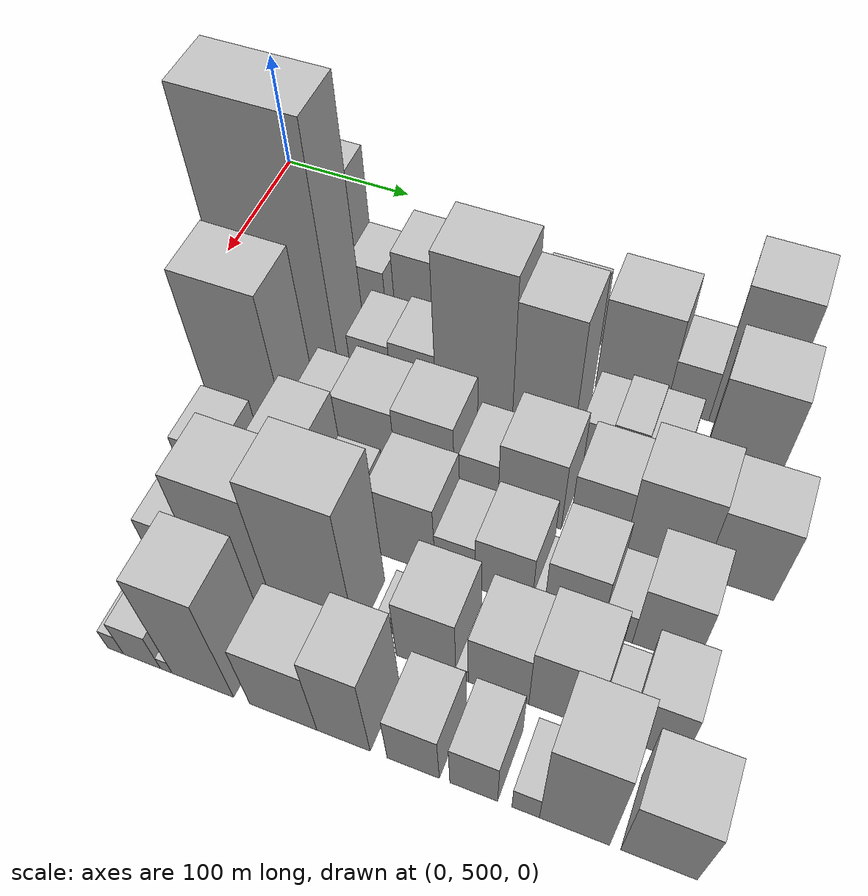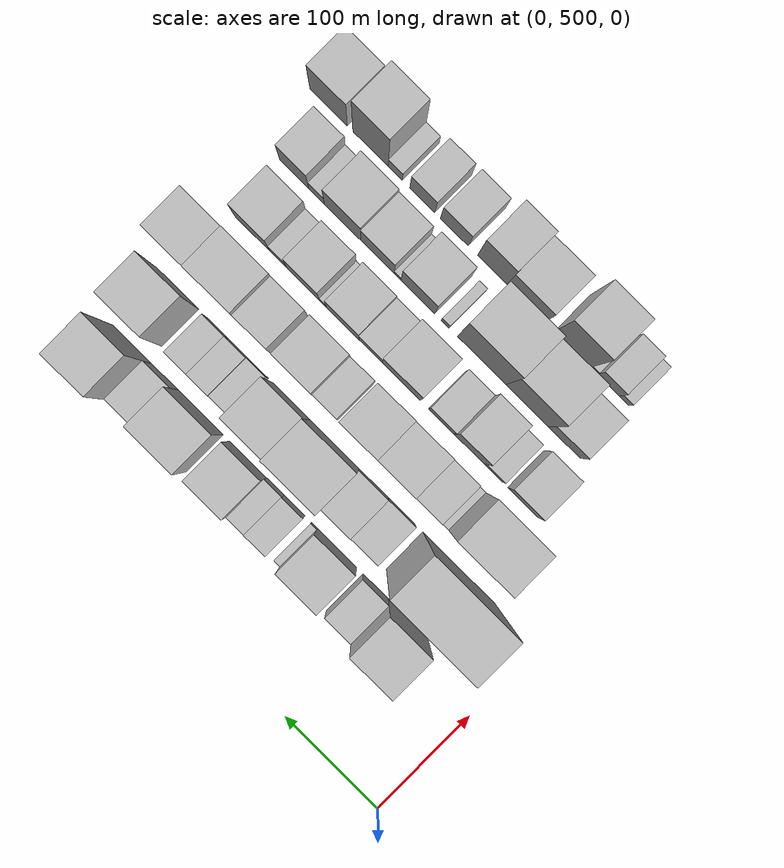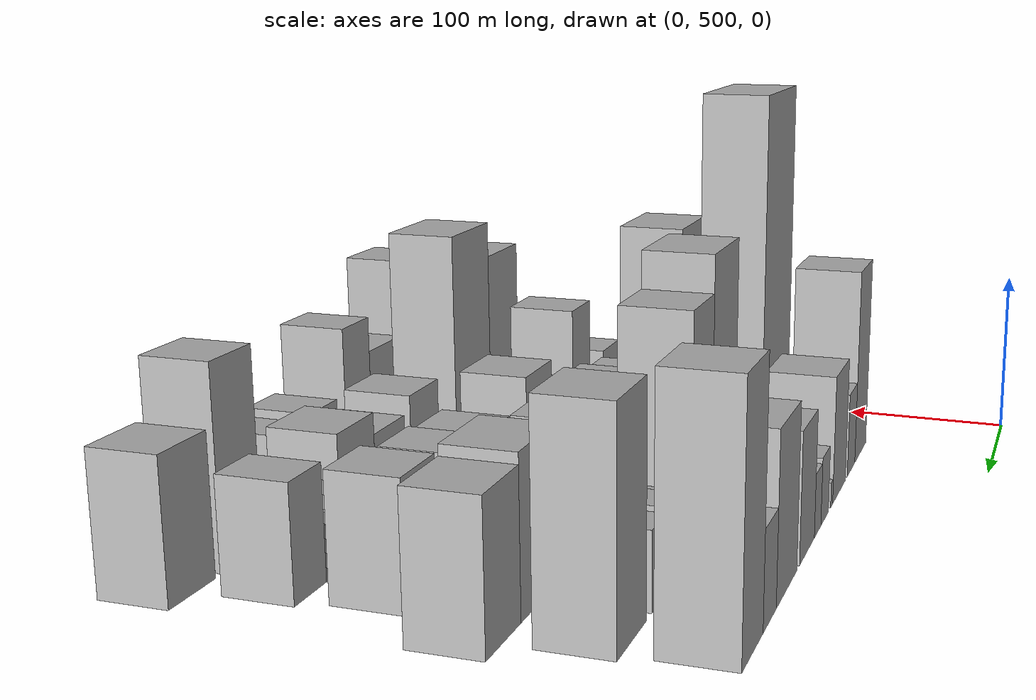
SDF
<sdf version="1.6">
 <world name="default">
  <model name="building_42">
   <static>1</static>
   <pose>100.0000 586.4591 0 0.000000 0.000000 0.000000</pose>
   <link name="link">
    <pose>0 0 60.00 0 0 0</pose>
    <collision name="collision"><geometry><box><size>40.0000 42.4041 120.0000</size></box></geometry></collision>
    <visual name="visual">
     <cast_shadows>0</cast_shadows>
     <geometry><box><size>40.0000 42.4041 120.0000</size></box></geometry>
     <material>
      <script>
       <uri>model://HANNAS_wall/materials/scripts</uri>
       <uri>model://HANNAS_wall/materials/textures</uri>
       <name>vrc/HANNAS_wall</name>
      </script>
     </material>
    </visual>
   </link>
  </model>
  <model name="building_43">
   <static>1</static>
   <pose>100.0000 621.3131 0 0.000000 0.000000 0.000000</pose>
   <link name="link">
    <pose>0 0 25.50 0 0 0</pose>
    <collision name="collision"><geometry><box><size>40.0000 27.3041 51.0000</size></box></geometry></collision>
    <visual name="visual">
     <cast_shadows>0</cast_shadows>
     <geometry><box><size>40.0000 27.3041 51.0000</size></box></geometry>
     <material>
      <script>
       <uri>model://HANNAS_wall/materials/scripts</uri>
       <uri>model://HANNAS_wall/materials/textures</uri>
       <name>vrc/HANNAS_wall</name>
      </script>
     </material>
    </visual>
   </link>
  </model>
  <model name="building_44">
   <static>1</static>
   <pose>100.0000 663.0718 0 0.000000 0.000000 0.000000</pose>
   <link name="link">
    <pose>0 0 37.50 0 0 0</pose>
    <collision name="collision"><geometry><box><size>40.0000 42.2133 75.0000</size></box></geometry></collision>
    <visual name="visual">
     <cast_shadows>0</cast_shadows>
     <geometry><box><size>40.0000 42.2133 75.0000</size></box></geometry>
     <material>
      <script>
       <uri>model://HANNAS_wall/materials/scripts</uri>
       <uri>model://HANNAS_wall/materials/textures</uri>
       <name>vrc/HANNAS_wall</name>
      </script>
     </material>
    </visual>
   </link>
  </model>
  <model name="building_45">
   <static>1</static>
   <pose>100.0000 687.4106 0 0.000000 0.000000 0.000000</pose>
   <link name="link">
    <pose>0 0 7.50 0 0 0</pose>
    <collision name="collision"><geometry><box><size>40.0000 6.4641 15.0000</size></box></geometry></collision>
    <visual name="visual">
     <cast_shadows>0</cast_shadows>
     <geometry><box><size>40.0000 6.4641 15.0000</size></box></geometry>
     <material>
      <script>
       <uri>model://HANNAS_wall/materials/scripts</uri>
       <uri>model://HANNAS_wall/materials/textures</uri>
       <name>vrc/HANNAS_wall</name>
      </script>
     </material>
    </visual>
   </link>
  </model>
  <model name="building_46">
   <static>1</static>
   <pose>100.0000 708.9300 0 0.000000 0.000000 0.000000</pose>
   <link name="link">
    <pose>0 0 19.50 0 0 0</pose>
    <collision name="collision"><geometry><box><size>40.0000 22.5746 39.0000</size></box></geometry></collision>
    <visual name="visual">
     <cast_shadows>0</cast_shadows>
     <geometry><box><size>40.0000 22.5746 39.0000</size></box></geometry>
     <material>
      <script>
       <uri>model://HANNAS_wall/materials/scripts</uri>
       <uri>model://HANNAS_wall/materials/textures</uri>
       <name>vrc/HANNAS_wall</name>
      </script>
     </material>
    </visual>
   </link>
  </model>
  <model name="building_47">
   <static>1</static>
   <pose>100.0000 729.6130 0 0.000000 0.000000 0.000000</pose>
   <link name="link">
    <pose>0 0 18.00 0 0 0</pose>
    <collision name="collision"><geometry><box><size>40.0000 18.7915 36.0000</size></box></geometry></collision>
    <visual name="visual">
     <cast_shadows>0</cast_shadows>
     <geometry><box><size>40.0000 18.7915 36.0000</size></box></geometry>
     <material>
      <script>
       <uri>model://HANNAS_wall/materials/scripts</uri>
       <uri>model://HANNAS_wall/materials/textures</uri>
       <name>vrc/HANNAS_wall</name>
      </script>
     </material>
    </visual>
   </link>
  </model>
  <model name="building_48">
   <static>1</static>
   <pose>100.0000 759.0133 0 0.000000 0.000000 0.000000</pose>
   <link name="link">
    <pose>0 0 36.00 0 0 0</pose>
    <collision name="collision"><geometry><box><size>40.0000 40.0090 72.0000</size></box></geometry></collision>
    <visual name="visual">
     <cast_shadows>0</cast_shadows>
     <geometry><box><size>40.0000 40.0090 72.0000</size></box></geometry>
     <material>
      <script>
       <uri>model://HANNAS_wall/materials/scripts</uri>
       <uri>model://HANNAS_wall/materials/textures</uri>
       <name>vrc/HANNAS_wall</name>
      </script>
     </material>
    </visual>
   </link>
  </model>
  <model name="building_49">
   <static>1</static>
   <pose>100.0000 810.4328 0 0.000000 0.000000 0.000000</pose>
   <link name="link">
    <pose>0 0 45.00 0 0 0</pose>
    <collision name="collision"><geometry><box><size>40.0000 48.8301 90.0000</size></box></geometry></collision>
    <visual name="visual">
     <cast_shadows>0</cast_shadows>
     <geometry><box><size>40.0000 48.8301 90.0000</size></box></geometry>
     <material>
      <script>
       <uri>model://HANNAS_wall/materials/scripts</uri>
       <uri>model://HANNAS_wall/materials/textures</uri>
       <name>vrc/HANNAS_wall</name>
      </script>
     </material>
    </visual>
   </link>
  </model>
  <model name="building_50">
   <static>1</static>
   <pose>100.0000 849.0841 0 0.000000 0.000000 0.000000</pose>
   <link name="link">
    <pose>0 0 25.50 0 0 0</pose>
    <collision name="collision"><geometry><box><size>40.0000 28.4724 51.0000</size></box></geometry></collision>
    <visual name="visual">
     <cast_shadows>0</cast_shadows>
     <geometry><box><size>40.0000 28.4724 51.0000</size></box></geometry>
     <material>
      <script>
       <uri>model://HANNAS_wall/materials/scripts</uri>
       <uri>model://HANNAS_wall/materials/textures</uri>
       <name>vrc/HANNAS_wall</name>
      </script>
     </material>
    </visual>
   </link>
  </model>
  <model name="building_51">
   <static>1</static>
   <pose>100.0000 884.3247 0 0.000000 0.000000 0.000000</pose>
   <link name="link">
    <pose>0 0 67.50 0 0 0</pose>
    <collision name="collision"><geometry><box><size>40.0000 42.0088 135.0000</size></box></geometry></collision>
    <visual name="visual">
     <cast_shadows>0</cast_shadows>
     <geometry><box><size>40.0000 42.0088 135.0000</size></box></geometry>
     <material>
      <script>
       <uri>model://HANNAS_wall/materials/scripts</uri>
       <uri>model://HANNAS_wall/materials/textures</uri>
       <name>vrc/HANNAS_wall</name>
      </script>
     </material>
    </visual>
   </link>
  </model>
  <model name="building_93">
   <static>1</static>
   <pose>155.0000 585.9668 0 0.000000 0.000000 0.000000</pose>
   <link name="link">
    <pose>0 0 112.50 0 0 0</pose>
    <collision name="collision"><geometry><box><size>40.0000 77.8137 225.0000</size></box></geometry></collision>
    <visual name="visual">
     <cast_shadows>0</cast_shadows>
     <geometry><box><size>40.0000 77.8137 225.0000</size></box></geometry>
     <material>
      <script>
       <uri>model://HANNAS_wall/materials/scripts</uri>
       <uri>model://HANNAS_wall/materials/textures</uri>
       <name>vrc/HANNAS_wall</name>
      </script>
     </material>
    </visual>
   </link>
  </model>
  <model name="building_94">
   <static>1</static>
   <pose>155.0000 648.2021 0 0.000000 0.000000 0.000000</pose>
   <link name="link">
    <pose>0 0 25.50 0 0 0</pose>
    <collision name="collision"><geometry><box><size>40.0000 28.6569 51.0000</size></box></geometry></collision>
    <visual name="visual">
     <cast_shadows>0</cast_shadows>
     <geometry><box><size>40.0000 28.6569 51.0000</size></box></geometry>
     <material>
      <script>
       <uri>model://HANNAS_wall/materials/scripts</uri>
       <uri>model://HANNAS_wall/materials/textures</uri>
       <name>vrc/HANNAS_wall</name>
      </script>
     </material>
    </visual>
   </link>
  </model>
  <model name="building_95">
   <static>1</static>
   <pose>155.0000 678.3458 0 0.000000 0.000000 0.000000</pose>
   <link name="link">
    <pose>0 0 28.50 0 0 0</pose>
    <collision name="collision"><geometry><box><size>40.0000 31.6305 57.0000</size></box></geometry></collision>
    <visual name="visual">
     <cast_shadows>0</cast_shadows>
     <geometry><box><size>40.0000 31.6305 57.0000</size></box></geometry>
     <material>
      <script>
       <uri>model://HANNAS_wall/materials/scripts</uri>
       <uri>model://HANNAS_wall/materials/textures</uri>
       <name>vrc/HANNAS_wall</name>
      </script>
     </material>
    </visual>
   </link>
  </model>
  <model name="building_96">
   <static>1</static>
   <pose>155.0000 720.3767 0 0.000000 0.000000 0.000000</pose>
   <link name="link">
    <pose>0 0 76.50 0 0 0</pose>
    <collision name="collision"><geometry><box><size>40.0000 52.4313 153.0000</size></box></geometry></collision>
    <visual name="visual">
     <cast_shadows>0</cast_shadows>
     <geometry><box><size>40.0000 52.4313 153.0000</size></box></geometry>
     <material>
      <script>
       <uri>model://HANNAS_wall/materials/scripts</uri>
       <uri>model://HANNAS_wall/materials/textures</uri>
       <name>vrc/HANNAS_wall</name>
      </script>
     </material>
    </visual>
   </link>
  </model>
  <model name="building_97">
   <static>1</static>
   <pose>155.0000 767.0884 0 0.000000 0.000000 0.000000</pose>
   <link name="link">
    <pose>0 0 66.00 0 0 0</pose>
    <collision name="collision"><geometry><box><size>40.0000 40.9922 132.0000</size></box></geometry></collision>
    <visual name="visual">
     <cast_shadows>0</cast_shadows>
     <geometry><box><size>40.0000 40.9922 132.0000</size></box></geometry>
     <material>
      <script>
       <uri>model://HANNAS_wall/materials/scripts</uri>
       <uri>model://HANNAS_wall/materials/textures</uri>
       <name>vrc/HANNAS_wall</name>
      </script>
     </material>
    </visual>
   </link>
  </model>
  <model name="building_98">
   <static>1</static>
   <pose>155.0000 801.6660 0 0.000000 0.000000 0.000000</pose>
   <link name="link">
    <pose>0 0 19.50 0 0 0</pose>
    <collision name="collision"><geometry><box><size>40.0000 20.1630 39.0000</size></box></geometry></collision>
    <visual name="visual">
     <cast_shadows>0</cast_shadows>
     <geometry><box><size>40.0000 20.1630 39.0000</size></box></geometry>
     <material>
      <script>
       <uri>model://HANNAS_wall/materials/scripts</uri>
       <uri>model://HANNAS_wall/materials/textures</uri>
       <name>vrc/HANNAS_wall</name>
      </script>
     </material>
    </visual>
   </link>
  </model>
  <model name="building_99">
   <static>1</static>
   <pose>155.0000 823.0206 0 0.000000 0.000000 0.000000</pose>
   <link name="link">
    <pose>0 0 22.50 0 0 0</pose>
    <collision name="collision"><geometry><box><size>40.0000 22.5461 45.0000</size></box></geometry></collision>
    <visual name="visual">
     <cast_shadows>0</cast_shadows>
     <geometry><box><size>40.0000 22.5461 45.0000</size></box></geometry>
     <material>
      <script>
       <uri>model://HANNAS_wall/materials/scripts</uri>
       <uri>model://HANNAS_wall/materials/textures</uri>
       <name>vrc/HANNAS_wall</name>
      </script>
     </material>
    </visual>
   </link>
  </model>
  <model name="building_100">
   <static>1</static>
   <pose>155.0000 846.1812 0 0.000000 0.000000 0.000000</pose>
   <link name="link">
    <pose>0 0 21.00 0 0 0</pose>
    <collision name="collision"><geometry><box><size>40.0000 23.7752 42.0000</size></box></geometry></collision>
    <visual name="visual">
     <cast_shadows>0</cast_shadows>
     <geometry><box><size>40.0000 23.7752 42.0000</size></box></geometry>
     <material>
      <script>
       <uri>model://HANNAS_wall/materials/scripts</uri>
       <uri>model://HANNAS_wall/materials/textures</uri>
       <name>vrc/HANNAS_wall</name>
      </script>
     </material>
    </visual>
   </link>
  </model>
  <model name="building_101">
   <static>1</static>
   <pose>155.0000 889.3087 0 0.000000 0.000000 0.000000</pose>
   <link name="link">
    <pose>0 0 60.00 0 0 0</pose>
    <collision name="collision"><geometry><box><size>40.0000 44.4796 120.0000</size></box></geometry></collision>
    <visual name="visual">
     <cast_shadows>0</cast_shadows>
     <geometry><box><size>40.0000 44.4796 120.0000</size></box></geometry>
     <material>
      <script>
       <uri>model://HANNAS_wall/materials/scripts</uri>
       <uri>model://HANNAS_wall/materials/textures</uri>
       <name>vrc/HANNAS_wall</name>
      </script>
     </material>
    </visual>
   </link>
  </model>
  <model name="building_142">
   <static>1</static>
   <pose>210.0000 586.0598 0 0.000000 0.000000 0.000000</pose>
   <link name="link">
    <pose>0 0 70.50 0 0 0</pose>
    <collision name="collision"><geometry><box><size>40.0000 54.6629 141.0000</size></box></geometry></collision>
    <visual name="visual">
     <cast_shadows>0</cast_shadows>
     <geometry><box><size>40.0000 54.6629 141.0000</size></box></geometry>
     <material>
      <script>
       <uri>model://HANNAS_wall/materials/scripts</uri>
       <uri>model://HANNAS_wall/materials/textures</uri>
       <name>vrc/HANNAS_wall</name>
      </script>
     </material>
    </visual>
   </link>
  </model>
  <model name="building_143">
   <static>1</static>
   <pose>210.0000 617.5673 0 0.000000 0.000000 0.000000</pose>
   <link name="link">
    <pose>0 0 9.00 0 0 0</pose>
    <collision name="collision"><geometry><box><size>40.0000 8.3521 18.0000</size></box></geometry></collision>
    <visual name="visual">
     <cast_shadows>0</cast_shadows>
     <geometry><box><size>40.0000 8.3521 18.0000</size></box></geometry>
     <material>
      <script>
       <uri>model://HANNAS_wall/materials/scripts</uri>
       <uri>model://HANNAS_wall/materials/textures</uri>
       <name>vrc/HANNAS_wall</name>
      </script>
     </material>
    </visual>
   </link>
  </model>
  <model name="building_144">
   <static>1</static>
   <pose>210.0000 635.7502 0 0.000000 0.000000 0.000000</pose>
   <link name="link">
    <pose>0 0 25.50 0 0 0</pose>
    <collision name="collision"><geometry><box><size>40.0000 28.0137 51.0000</size></box></geometry></collision>
    <visual name="visual">
     <cast_shadows>0</cast_shadows>
     <geometry><box><size>40.0000 28.0137 51.0000</size></box></geometry>
     <material>
      <script>
       <uri>model://HANNAS_wall/materials/scripts</uri>
       <uri>model://HANNAS_wall/materials/textures</uri>
       <name>vrc/HANNAS_wall</name>
      </script>
     </material>
    </visual>
   </link>
  </model>
  <model name="building_145">
   <static>1</static>
   <pose>210.0000 669.5220 0 0.000000 0.000000 0.000000</pose>
   <link name="link">
    <pose>0 0 33.00 0 0 0</pose>
    <collision name="collision"><geometry><box><size>40.0000 39.5300 66.0000</size></box></geometry></collision>
    <visual name="visual">
     <cast_shadows>0</cast_shadows>
     <geometry><box><size>40.0000 39.5300 66.0000</size></box></geometry>
     <material>
      <script>
       <uri>model://HANNAS_wall/materials/scripts</uri>
       <uri>model://HANNAS_wall/materials/textures</uri>
       <name>vrc/HANNAS_wall</name>
      </script>
     </material>
    </visual>
   </link>
  </model>
  <model name="building_146">
   <static>1</static>
   <pose>210.0000 708.9794 0 0.000000 0.000000 0.000000</pose>
   <link name="link">
    <pose>0 0 36.00 0 0 0</pose>
    <collision name="collision"><geometry><box><size>40.0000 39.3848 72.0000</size></box></geometry></collision>
    <visual name="visual">
     <cast_shadows>0</cast_shadows>
     <geometry><box><size>40.0000 39.3848 72.0000</size></box></geometry>
     <material>
      <script>
       <uri>model://HANNAS_wall/materials/scripts</uri>
       <uri>model://HANNAS_wall/materials/textures</uri>
       <name>vrc/HANNAS_wall</name>
      </script>
     </material>
    </visual>
   </link>
  </model>
  <model name="building_147">
   <static>1</static>
   <pose>210.0000 744.5570 0 0.000000 0.000000 0.000000</pose>
   <link name="link">
    <pose>0 0 24.00 0 0 0</pose>
    <collision name="collision"><geometry><box><size>40.0000 25.7705 48.0000</size></box></geometry></collision>
    <visual name="visual">
     <cast_shadows>0</cast_shadows>
     <geometry><box><size>40.0000 25.7705 48.0000</size></box></geometry>
     <material>
      <script>
       <uri>model://HANNAS_wall/materials/scripts</uri>
       <uri>model://HANNAS_wall/materials/textures</uri>
       <name>vrc/HANNAS_wall</name>
      </script>
     </material>
    </visual>
   </link>
  </model>
  <model name="building_148">
   <static>1</static>
   <pose>210.0000 777.9944 0 0.000000 0.000000 0.000000</pose>
   <link name="link">
    <pose>0 0 36.00 0 0 0</pose>
    <collision name="collision"><geometry><box><size>40.0000 41.1043 72.0000</size></box></geometry></collision>
    <visual name="visual">
     <cast_shadows>0</cast_shadows>
     <geometry><box><size>40.0000 41.1043 72.0000</size></box></geometry>
     <material>
      <script>
       <uri>model://HANNAS_wall/materials/scripts</uri>
       <uri>model://HANNAS_wall/materials/textures</uri>
       <name>vrc/HANNAS_wall</name>
      </script>
     </material>
    </visual>
   </link>
  </model>
  <model name="building_149">
   <static>1</static>
   <pose>210.0000 821.1472 0 0.000000 0.000000 0.000000</pose>
   <link name="link">
    <pose>0 0 33.00 0 0 0</pose>
    <collision name="collision"><geometry><box><size>40.0000 35.2014 66.0000</size></box></geometry></collision>
    <visual name="visual">
     <cast_shadows>0</cast_shadows>
     <geometry><box><size>40.0000 35.2014 66.0000</size></box></geometry>
     <material>
      <script>
       <uri>model://HANNAS_wall/materials/scripts</uri>
       <uri>model://HANNAS_wall/materials/textures</uri>
       <name>vrc/HANNAS_wall</name>
      </script>
     </material>
    </visual>
   </link>
  </model>
  <model name="building_150">
   <static>1</static>
   <pose>210.0000 863.0113 0 0.000000 0.000000 0.000000</pose>
   <link name="link">
    <pose>0 0 42.00 0 0 0</pose>
    <collision name="collision"><geometry><box><size>40.0000 48.5268 84.0000</size></box></geometry></collision>
    <visual name="visual">
     <cast_shadows>0</cast_shadows>
     <geometry><box><size>40.0000 48.5268 84.0000</size></box></geometry>
     <material>
      <script>
       <uri>model://HANNAS_wall/materials/scripts</uri>
       <uri>model://HANNAS_wall/materials/textures</uri>
       <name>vrc/HANNAS_wall</name>
      </script>
     </material>
    </visual>
   </link>
  </model>
  <model name="building_151">
   <static>1</static>
   <pose>210.0000 908.4599 0 0.000000 0.000000 0.000000</pose>
   <link name="link">
    <pose>0 0 39.00 0 0 0</pose>
    <collision name="collision"><geometry><box><size>40.0000 42.3704 78.0000</size></box></geometry></collision>
    <visual name="visual">
     <cast_shadows>0</cast_shadows>
     <geometry><box><size>40.0000 42.3704 78.0000</size></box></geometry>
     <material>
      <script>
       <uri>model://HANNAS_wall/materials/scripts</uri>
       <uri>model://HANNAS_wall/materials/textures</uri>
       <name>vrc/HANNAS_wall</name>
      </script>
     </material>
    </visual>
   </link>
  </model>
  <model name="building_191">
   <static>1</static>
   <pose>265.0000 586.9004 0 0.000000 0.000000 0.000000</pose>
   <link name="link">
    <pose>0 0 28.50 0 0 0</pose>
    <collision name="collision"><geometry><box><size>40.0000 32.0996 57.0000</size></box></geometry></collision>
    <visual name="visual">
     <cast_shadows>0</cast_shadows>
     <geometry><box><size>40.0000 32.0996 57.0000</size></box></geometry>
     <material>
      <script>
       <uri>model://HANNAS_wall/materials/scripts</uri>
       <uri>model://HANNAS_wall/materials/textures</uri>
       <name>vrc/HANNAS_wall</name>
      </script>
     </material>
    </visual>
   </link>
  </model>
  <model name="building_192">
   <static>1</static>
   <pose>265.0000 619.0767 0 0.000000 0.000000 0.000000</pose>
   <link name="link">
    <pose>0 0 18.00 0 0 0</pose>
    <collision name="collision"><geometry><box><size>40.0000 20.2529 36.0000</size></box></geometry></collision>
    <visual name="visual">
     <cast_shadows>0</cast_shadows>
     <geometry><box><size>40.0000 20.2529 36.0000</size></box></geometry>
     <material>
      <script>
       <uri>model://HANNAS_wall/materials/scripts</uri>
       <uri>model://HANNAS_wall/materials/textures</uri>
       <name>vrc/HANNAS_wall</name>
      </script>
     </material>
    </visual>
   </link>
  </model>
  <model name="building_193">
   <static>1</static>
   <pose>265.0000 645.2405 0 0.000000 0.000000 0.000000</pose>
   <link name="link">
    <pose>0 0 48.00 0 0 0</pose>
    <collision name="collision"><geometry><box><size>40.0000 32.0748 96.0000</size></box></geometry></collision>
    <visual name="visual">
     <cast_shadows>0</cast_shadows>
     <geometry><box><size>40.0000 32.0748 96.0000</size></box></geometry>
     <material>
      <script>
       <uri>model://HANNAS_wall/materials/scripts</uri>
       <uri>model://HANNAS_wall/materials/textures</uri>
       <name>vrc/HANNAS_wall</name>
      </script>
     </material>
    </visual>
   </link>
  </model>
  <model name="building_194">
   <static>1</static>
   <pose>265.0000 674.8630 0 0.000000 0.000000 0.000000</pose>
   <link name="link">
    <pose>0 0 25.50 0 0 0</pose>
    <collision name="collision"><geometry><box><size>40.0000 27.1702 51.0000</size></box></geometry></collision>
    <visual name="visual">
     <cast_shadows>0</cast_shadows>
     <geometry><box><size>40.0000 27.1702 51.0000</size></box></geometry>
     <material>
      <script>
       <uri>model://HANNAS_wall/materials/scripts</uri>
       <uri>model://HANNAS_wall/materials/textures</uri>
       <name>vrc/HANNAS_wall</name>
      </script>
     </material>
    </visual>
   </link>
  </model>
  <model name="building_195">
   <static>1</static>
   <pose>265.0000 717.8238 0 0.000000 0.000000 0.000000</pose>
   <link name="link">
    <pose>0 0 37.50 0 0 0</pose>
    <collision name="collision"><geometry><box><size>40.0000 40.7514 75.0000</size></box></geometry></collision>
    <visual name="visual">
     <cast_shadows>0</cast_shadows>
     <geometry><box><size>40.0000 40.7514 75.0000</size></box></geometry>
     <material>
      <script>
       <uri>model://HANNAS_wall/materials/scripts</uri>
       <uri>model://HANNAS_wall/materials/textures</uri>
       <name>vrc/HANNAS_wall</name>
      </script>
     </material>
    </visual>
   </link>
  </model>
  <model name="building_196">
   <static>1</static>
   <pose>265.0000 750.7844 0 0.000000 0.000000 0.000000</pose>
   <link name="link">
    <pose>0 0 24.00 0 0 0</pose>
    <collision name="collision"><geometry><box><size>40.0000 25.1699 48.0000</size></box></geometry></collision>
    <visual name="visual">
     <cast_shadows>0</cast_shadows>
     <geometry><box><size>40.0000 25.1699 48.0000</size></box></geometry>
     <material>
      <script>
       <uri>model://HANNAS_wall/materials/scripts</uri>
       <uri>model://HANNAS_wall/materials/textures</uri>
       <name>vrc/HANNAS_wall</name>
      </script>
     </material>
    </visual>
   </link>
  </model>
  <model name="building_197">
   <static>1</static>
   <pose>265.0000 781.0442 0 0.000000 0.000000 0.000000</pose>
   <link name="link">
    <pose>0 0 30.00 0 0 0</pose>
    <collision name="collision"><geometry><box><size>40.0000 35.3497 60.0000</size></box></geometry></collision>
    <visual name="visual">
     <cast_shadows>0</cast_shadows>
     <geometry><box><size>40.0000 35.3497 60.0000</size></box></geometry>
     <material>
      <script>
       <uri>model://HANNAS_wall/materials/scripts</uri>
       <uri>model://HANNAS_wall/materials/textures</uri>
       <name>vrc/HANNAS_wall</name>
      </script>
     </material>
    </visual>
   </link>
  </model>
  <model name="building_198">
   <static>1</static>
   <pose>265.0000 802.3979 0 0.000000 0.000000 0.000000</pose>
   <link name="link">
    <pose>0 0 9.00 0 0 0</pose>
    <collision name="collision"><geometry><box><size>40.0000 7.3576 18.0000</size></box></geometry></collision>
    <visual name="visual">
     <cast_shadows>0</cast_shadows>
     <geometry><box><size>40.0000 7.3576 18.0000</size></box></geometry>
     <material>
      <script>
       <uri>model://HANNAS_wall/materials/scripts</uri>
       <uri>model://HANNAS_wall/materials/textures</uri>
       <name>vrc/HANNAS_wall</name>
      </script>
     </material>
    </visual>
   </link>
  </model>
  <model name="building_199">
   <static>1</static>
   <pose>265.0000 823.7435 0 0.000000 0.000000 0.000000</pose>
   <link name="link">
    <pose>0 0 31.50 0 0 0</pose>
    <collision name="collision"><geometry><box><size>40.0000 35.3336 63.0000</size></box></geometry></collision>
    <visual name="visual">
     <cast_shadows>0</cast_shadows>
     <geometry><box><size>40.0000 35.3336 63.0000</size></box></geometry>
     <material>
      <script>
       <uri>model://HANNAS_wall/materials/scripts</uri>
       <uri>model://HANNAS_wall/materials/textures</uri>
       <name>vrc/HANNAS_wall</name>
      </script>
     </material>
    </visual>
   </link>
  </model>
  <model name="building_200">
   <static>1</static>
   <pose>265.0000 850.4867 0 0.000000 0.000000 0.000000</pose>
   <link name="link">
    <pose>0 0 16.50 0 0 0</pose>
    <collision name="collision"><geometry><box><size>40.0000 18.1528 33.0000</size></box></geometry></collision>
    <visual name="visual">
     <cast_shadows>0</cast_shadows>
     <geometry><box><size>40.0000 18.1528 33.0000</size></box></geometry>
     <material>
      <script>
       <uri>model://HANNAS_wall/materials/scripts</uri>
       <uri>model://HANNAS_wall/materials/textures</uri>
       <name>vrc/HANNAS_wall</name>
      </script>
     </material>
    </visual>
   </link>
  </model>
  <model name="building_201">
   <static>1</static>
   <pose>265.0000 878.3511 0 0.000000 0.000000 0.000000</pose>
   <link name="link">
    <pose>0 0 34.50 0 0 0</pose>
    <collision name="collision"><geometry><box><size>40.0000 37.5761 69.0000</size></box></geometry></collision>
    <visual name="visual">
     <cast_shadows>0</cast_shadows>
     <geometry><box><size>40.0000 37.5761 69.0000</size></box></geometry>
     <material>
      <script>
       <uri>model://HANNAS_wall/materials/scripts</uri>
       <uri>model://HANNAS_wall/materials/textures</uri>
       <name>vrc/HANNAS_wall</name>
      </script>
     </material>
    </visual>
   </link>
  </model>
  <model name="building_239">
   <static>1</static>
   <pose>320.0000 596.4258 0 0.000000 0.000000 0.000000</pose>
   <link name="link">
    <pose>0 0 28.50 0 0 0</pose>
    <collision name="collision"><geometry><box><size>40.0000 34.0376 57.0000</size></box></geometry></collision>
    <visual name="visual">
     <cast_shadows>0</cast_shadows>
     <geometry><box><size>40.0000 34.0376 57.0000</size></box></geometry>
     <material>
      <script>
       <uri>model://HANNAS_wall/materials/scripts</uri>
       <uri>model://HANNAS_wall/materials/textures</uri>
       <name>vrc/HANNAS_wall</name>
      </script>
     </material>
    </visual>
   </link>
  </model>
  <model name="building_240">
   <static>1</static>
   <pose>320.0000 636.4203 0 0.000000 0.000000 0.000000</pose>
   <link name="link">
    <pose>0 0 63.00 0 0 0</pose>
    <collision name="collision"><geometry><box><size>40.0000 45.9515 126.0000</size></box></geometry></collision>
    <visual name="visual">
     <cast_shadows>0</cast_shadows>
     <geometry><box><size>40.0000 45.9515 126.0000</size></box></geometry>
     <material>
      <script>
       <uri>model://HANNAS_wall/materials/scripts</uri>
       <uri>model://HANNAS_wall/materials/textures</uri>
       <name>vrc/HANNAS_wall</name>
      </script>
     </material>
    </visual>
   </link>
  </model>
  <model name="building_241">
   <static>1</static>
   <pose>320.0000 685.6059 0 0.000000 0.000000 0.000000</pose>
   <link name="link">
    <pose>0 0 73.50 0 0 0</pose>
    <collision name="collision"><geometry><box><size>40.0000 52.4197 147.0000</size></box></geometry></collision>
    <visual name="visual">
     <cast_shadows>0</cast_shadows>
     <geometry><box><size>40.0000 52.4197 147.0000</size></box></geometry>
     <material>
      <script>
       <uri>model://HANNAS_wall/materials/scripts</uri>
       <uri>model://HANNAS_wall/materials/textures</uri>
       <name>vrc/HANNAS_wall</name>
      </script>
     </material>
    </visual>
   </link>
  </model>
  <model name="building_242">
   <static>1</static>
   <pose>320.0000 725.1284 0 0.000000 0.000000 0.000000</pose>
   <link name="link">
    <pose>0 0 10.50 0 0 0</pose>
    <collision name="collision"><geometry><box><size>40.0000 8.6253 21.0000</size></box></geometry></collision>
    <visual name="visual">
     <cast_shadows>0</cast_shadows>
     <geometry><box><size>40.0000 8.6253 21.0000</size></box></geometry>
     <material>
      <script>
       <uri>model://HANNAS_wall/materials/scripts</uri>
       <uri>model://HANNAS_wall/materials/textures</uri>
       <name>vrc/HANNAS_wall</name>
      </script>
     </material>
    </visual>
   </link>
  </model>
  <model name="building_243">
   <static>1</static>
   <pose>320.0000 754.6647 0 0.000000 0.000000 0.000000</pose>
   <link name="link">
    <pose>0 0 34.50 0 0 0</pose>
    <collision name="collision"><geometry><box><size>40.0000 36.4472 69.0000</size></box></geometry></collision>
    <visual name="visual">
     <cast_shadows>0</cast_shadows>
     <geometry><box><size>40.0000 36.4472 69.0000</size></box></geometry>
     <material>
      <script>
       <uri>model://HANNAS_wall/materials/scripts</uri>
       <uri>model://HANNAS_wall/materials/textures</uri>
       <name>vrc/HANNAS_wall</name>
      </script>
     </material>
    </visual>
   </link>
  </model>
  <model name="building_244">
   <static>1</static>
   <pose>320.0000 776.5592 0 0.000000 0.000000 0.000000</pose>
   <link name="link">
    <pose>0 0 7.50 0 0 0</pose>
    <collision name="collision"><geometry><box><size>40.0000 7.3420 15.0000</size></box></geometry></collision>
    <visual name="visual">
     <cast_shadows>0</cast_shadows>
     <geometry><box><size>40.0000 7.3420 15.0000</size></box></geometry>
     <material>
      <script>
       <uri>model://HANNAS_wall/materials/scripts</uri>
       <uri>model://HANNAS_wall/materials/textures</uri>
       <name>vrc/HANNAS_wall</name>
      </script>
     </material>
    </visual>
   </link>
  </model>
  <model name="building_245">
   <static>1</static>
   <pose>320.0000 798.1583 0 0.000000 0.000000 0.000000</pose>
   <link name="link">
    <pose>0 0 30.00 0 0 0</pose>
    <collision name="collision"><geometry><box><size>40.0000 35.8561 60.0000</size></box></geometry></collision>
    <visual name="visual">
     <cast_shadows>0</cast_shadows>
     <geometry><box><size>40.0000 35.8561 60.0000</size></box></geometry>
     <material>
      <script>
       <uri>model://HANNAS_wall/materials/scripts</uri>
       <uri>model://HANNAS_wall/materials/textures</uri>
       <name>vrc/HANNAS_wall</name>
      </script>
     </material>
    </visual>
   </link>
  </model>
  <model name="building_246">
   <static>1</static>
   <pose>320.0000 835.7679 0 0.000000 0.000000 0.000000</pose>
   <link name="link">
    <pose>0 0 36.00 0 0 0</pose>
    <collision name="collision"><geometry><box><size>40.0000 39.3630 72.0000</size></box></geometry></collision>
    <visual name="visual">
     <cast_shadows>0</cast_shadows>
     <geometry><box><size>40.0000 39.3630 72.0000</size></box></geometry>
     <material>
      <script>
       <uri>model://HANNAS_wall/materials/scripts</uri>
       <uri>model://HANNAS_wall/materials/textures</uri>
       <name>vrc/HANNAS_wall</name>
      </script>
     </material>
    </visual>
   </link>
  </model>
  <model name="building_247">
   <static>1</static>
   <pose>320.0000 863.8326 0 0.000000 0.000000 0.000000</pose>
   <link name="link">
    <pose>0 0 15.00 0 0 0</pose>
    <collision name="collision"><geometry><box><size>40.0000 16.7663 30.0000</size></box></geometry></collision>
    <visual name="visual">
     <cast_shadows>0</cast_shadows>
     <geometry><box><size>40.0000 16.7663 30.0000</size></box></geometry>
     <material>
      <script>
       <uri>model://HANNAS_wall/materials/scripts</uri>
       <uri>model://HANNAS_wall/materials/textures</uri>
       <name>vrc/HANNAS_wall</name>
      </script>
     </material>
    </visual>
   </link>
  </model>
  <model name="building_248">
   <static>1</static>
   <pose>320.0000 888.0062 0 0.000000 0.000000 0.000000</pose>
   <link name="link">
    <pose>0 0 31.50 0 0 0</pose>
    <collision name="collision"><geometry><box><size>40.0000 31.5809 63.0000</size></box></geometry></collision>
    <visual name="visual">
     <cast_shadows>0</cast_shadows>
     <geometry><box><size>40.0000 31.5809 63.0000</size></box></geometry>
     <material>
      <script>
       <uri>model://HANNAS_wall/materials/scripts</uri>
       <uri>model://HANNAS_wall/materials/textures</uri>
       <name>vrc/HANNAS_wall</name>
      </script>
     </material>
    </visual>
   </link>
  </model>
  <model name="building_292">
   <static>1</static>
   <pose>375.0000 586.3344 0 0.000000 0.000000 0.000000</pose>
   <link name="link">
    <pose>0 0 12.00 0 0 0</pose>
    <collision name="collision"><geometry><box><size>40.0000 10.3094 24.0000</size></box></geometry></collision>
    <visual name="visual">
     <cast_shadows>0</cast_shadows>
     <geometry><box><size>40.0000 10.3094 24.0000</size></box></geometry>
     <material>
      <script>
       <uri>model://HANNAS_wall/materials/scripts</uri>
       <uri>model://HANNAS_wall/materials/textures</uri>
       <name>vrc/HANNAS_wall</name>
      </script>
     </material>
    </visual>
   </link>
  </model>
  <model name="building_293">
   <static>1</static>
   <pose>375.0000 603.4417 0 0.000000 0.000000 0.000000</pose>
   <link name="link">
    <pose>0 0 21.00 0 0 0</pose>
    <collision name="collision"><geometry><box><size>40.0000 23.9052 42.0000</size></box></geometry></collision>
    <visual name="visual">
     <cast_shadows>0</cast_shadows>
     <geometry><box><size>40.0000 23.9052 42.0000</size></box></geometry>
     <material>
      <script>
       <uri>model://HANNAS_wall/materials/scripts</uri>
       <uri>model://HANNAS_wall/materials/textures</uri>
       <name>vrc/HANNAS_wall</name>
      </script>
     </material>
    </visual>
   </link>
  </model>
  <model name="building_294">
   <static>1</static>
   <pose>375.0000 619.1041 0 0.000000 0.000000 0.000000</pose>
   <link name="link">
    <pose>0 0 7.50 0 0 0</pose>
    <collision name="collision"><geometry><box><size>40.0000 7.4195 15.0000</size></box></geometry></collision>
    <visual name="visual">
     <cast_shadows>0</cast_shadows>
     <geometry><box><size>40.0000 7.4195 15.0000</size></box></geometry>
     <material>
      <script>
       <uri>model://HANNAS_wall/materials/scripts</uri>
       <uri>model://HANNAS_wall/materials/textures</uri>
       <name>vrc/HANNAS_wall</name>
      </script>
     </material>
    </visual>
   </link>
  </model>
  <model name="building_295">
   <static>1</static>
   <pose>375.0000 642.3202 0 0.000000 0.000000 0.000000</pose>
   <link name="link">
    <pose>0 0 60.00 0 0 0</pose>
    <collision name="collision"><geometry><box><size>40.0000 39.0127 120.0000</size></box></geometry></collision>
    <visual name="visual">
     <cast_shadows>0</cast_shadows>
     <geometry><box><size>40.0000 39.0127 120.0000</size></box></geometry>
     <material>
      <script>
       <uri>model://HANNAS_wall/materials/scripts</uri>
       <uri>model://HANNAS_wall/materials/textures</uri>
       <name>vrc/HANNAS_wall</name>
      </script>
     </material>
    </visual>
   </link>
  </model>
  <model name="building_296">
   <static>1</static>
   <pose>375.0000 692.4050 0 0.000000 0.000000 0.000000</pose>
   <link name="link">
    <pose>0 0 37.50 0 0 0</pose>
    <collision name="collision"><geometry><box><size>40.0000 41.1570 75.0000</size></box></geometry></collision>
    <visual name="visual">
     <cast_shadows>0</cast_shadows>
     <geometry><box><size>40.0000 41.1570 75.0000</size></box></geometry>
     <material>
      <script>
       <uri>model://HANNAS_wall/materials/scripts</uri>
       <uri>model://HANNAS_wall/materials/textures</uri>
       <name>vrc/HANNAS_wall</name>
      </script>
     </material>
    </visual>
   </link>
  </model>
  <model name="building_297">
   <static>1</static>
   <pose>375.0000 728.8652 0 0.000000 0.000000 0.000000</pose>
   <link name="link">
    <pose>0 0 48.00 0 0 0</pose>
    <collision name="collision"><geometry><box><size>40.0000 31.7635 96.0000</size></box></geometry></collision>
    <visual name="visual">
     <cast_shadows>0</cast_shadows>
     <geometry><box><size>40.0000 31.7635 96.0000</size></box></geometry>
     <material>
      <script>
       <uri>model://HANNAS_wall/materials/scripts</uri>
       <uri>model://HANNAS_wall/materials/textures</uri>
       <name>vrc/HANNAS_wall</name>
      </script>
     </material>
    </visual>
   </link>
  </model>
  <model name="building_298">
   <static>1</static>
   <pose>375.0000 769.8769 0 0.000000 0.000000 0.000000</pose>
   <link name="link">
    <pose>0 0 28.50 0 0 0</pose>
    <collision name="collision"><geometry><box><size>40.0000 30.2599 57.0000</size></box></geometry></collision>
    <visual name="visual">
     <cast_shadows>0</cast_shadows>
     <geometry><box><size>40.0000 30.2599 57.0000</size></box></geometry>
     <material>
      <script>
       <uri>model://HANNAS_wall/materials/scripts</uri>
       <uri>model://HANNAS_wall/materials/textures</uri>
       <name>vrc/HANNAS_wall</name>
      </script>
     </material>
    </visual>
   </link>
  </model>
  <model name="building_299">
   <static>1</static>
   <pose>375.0000 804.5219 0 0.000000 0.000000 0.000000</pose>
   <link name="link">
    <pose>0 0 27.00 0 0 0</pose>
    <collision name="collision"><geometry><box><size>40.0000 27.0302 54.0000</size></box></geometry></collision>
    <visual name="visual">
     <cast_shadows>0</cast_shadows>
     <geometry><box><size>40.0000 27.0302 54.0000</size></box></geometry>
     <material>
      <script>
       <uri>model://HANNAS_wall/materials/scripts</uri>
       <uri>model://HANNAS_wall/materials/textures</uri>
       <name>vrc/HANNAS_wall</name>
      </script>
     </material>
    </visual>
   </link>
  </model>
  <model name="building_300">
   <static>1</static>
   <pose>375.0000 833.6505 0 0.000000 0.000000 0.000000</pose>
   <link name="link">
    <pose>0 0 15.00 0 0 0</pose>
    <collision name="collision"><geometry><box><size>40.0000 15.2270 30.0000</size></box></geometry></collision>
    <visual name="visual">
     <cast_shadows>0</cast_shadows>
     <geometry><box><size>40.0000 15.2270 30.0000</size></box></geometry>
     <material>
      <script>
       <uri>model://HANNAS_wall/materials/scripts</uri>
       <uri>model://HANNAS_wall/materials/textures</uri>
       <name>vrc/HANNAS_wall</name>
      </script>
     </material>
    </visual>
   </link>
  </model>
  <model name="building_301">
   <static>1</static>
   <pose>375.0000 860.3727 0 0.000000 0.000000 0.000000</pose>
   <link name="link">
    <pose>0 0 55.50 0 0 0</pose>
    <collision name="collision"><geometry><box><size>40.0000 38.2173 111.0000</size></box></geometry></collision>
    <visual name="visual">
     <cast_shadows>0</cast_shadows>
     <geometry><box><size>40.0000 38.2173 111.0000</size></box></geometry>
     <material>
      <script>
       <uri>model://HANNAS_wall/materials/scripts</uri>
       <uri>model://HANNAS_wall/materials/textures</uri>
       <name>vrc/HANNAS_wall</name>
      </script>
     </material>
    </visual>
   </link>
  </model>
  <model name="building_302">
   <static>1</static>
   <pose>375.0000 905.6826 0 0.000000 0.000000 0.000000</pose>
   <link name="link">
    <pose>0 0 39.00 0 0 0</pose>
    <collision name="collision"><geometry><box><size>40.0000 40.4025 78.0000</size></box></geometry></collision>
    <visual name="visual">
     <cast_shadows>0</cast_shadows>
     <geometry><box><size>40.0000 40.4025 78.0000</size></box></geometry>
     <material>
      <script>
       <uri>model://HANNAS_wall/materials/scripts</uri>
       <uri>model://HANNAS_wall/materials/textures</uri>
       <name>vrc/HANNAS_wall</name>
      </script>
     </material>
    </visual>
   </link>
  </model>
 </world>
</sdf>
